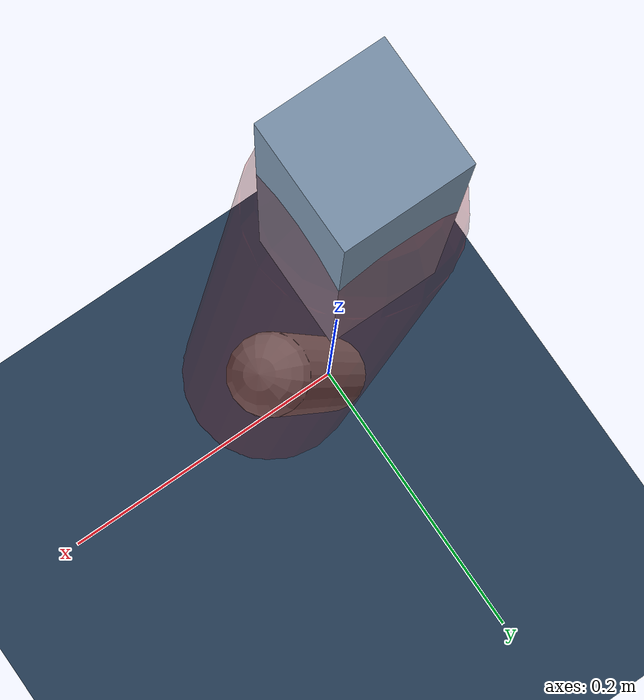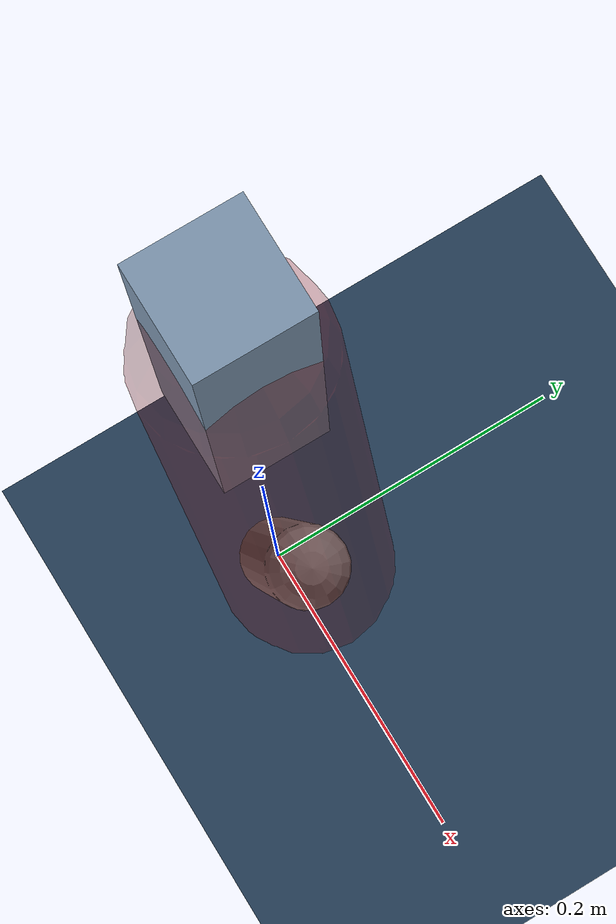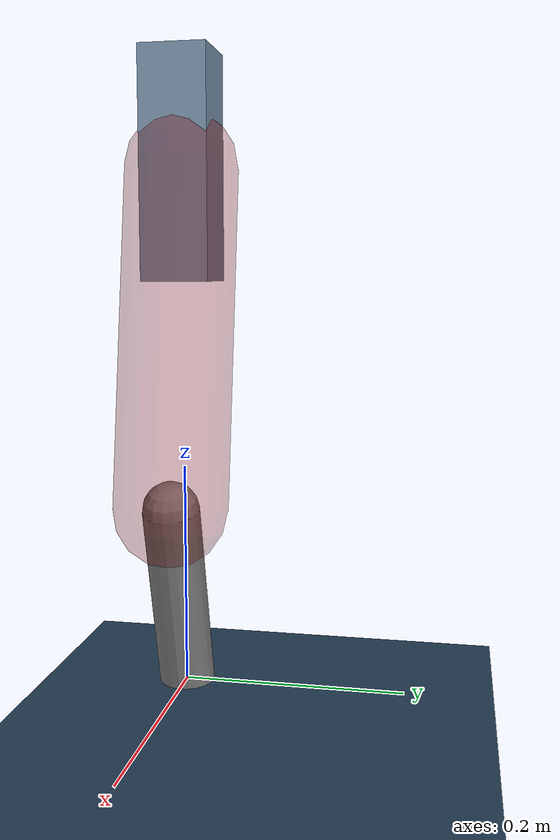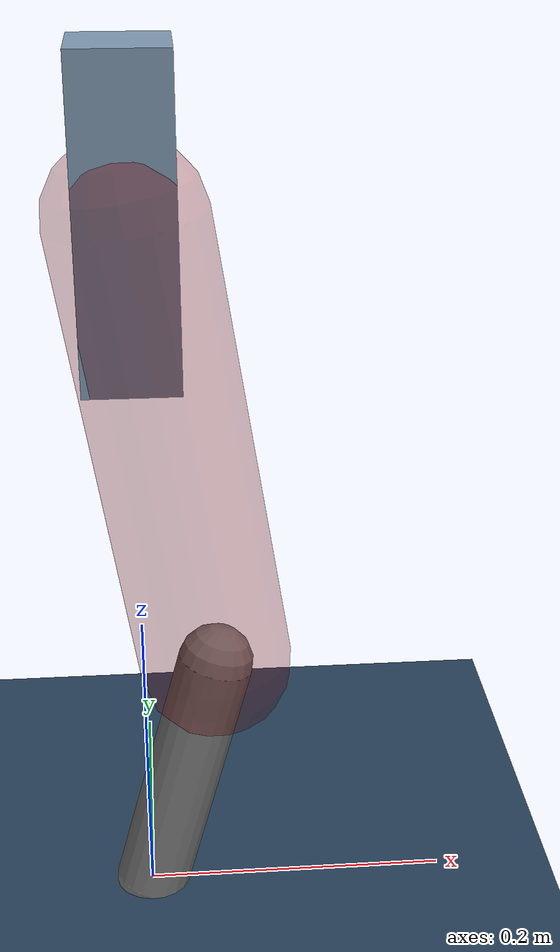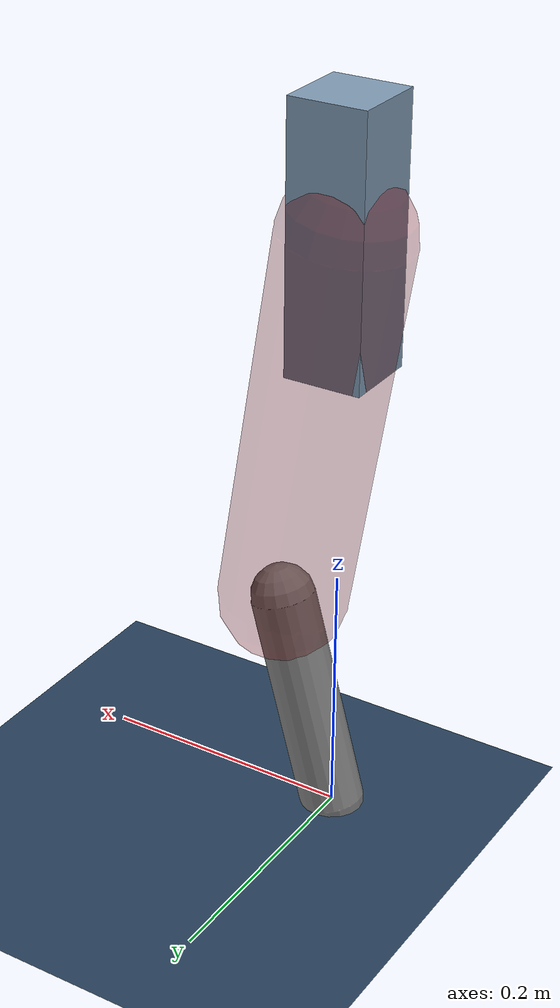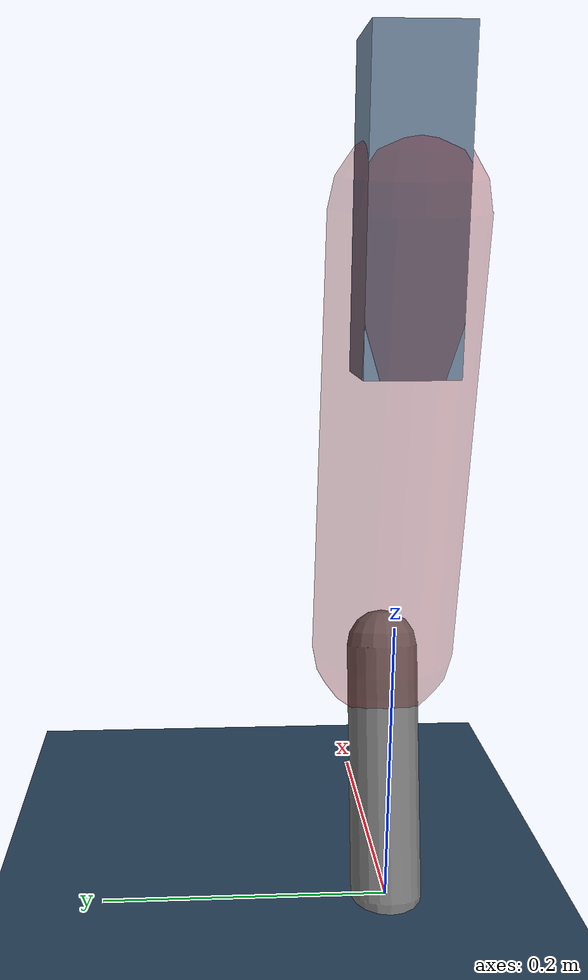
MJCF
<mujoco model="Hopper2D">
	<compiler inertiafromgeom="true" angle="radian" />
	<option timestep="0.001" integrator="implicit" cone="elliptic" solver="Newton" tolerance="1e-10" />

	<default>
		<geom contype="1" conaffinity="1" condim="3" friction="2 0.005 0.0001" solref="0.005 1" />
		<joint limited="true" damping="0.1" />
	</default>

	<asset>
		<texture name="skybox" type="skybox" builtin="gradient" rgb1=".4 .6 .8" rgb2="0 0 0" width="800" height="800" />
		<texture name="grid" type="2d" builtin="checker" rgb1=".1 .2 .3" rgb2=".2 .3 .4" width="300" height="300" mark="edge" markrgb=".2 .3 .4" />
		<material name="ground" texture="grid" texrepeat="1 1" texuniform="true" reflectance="0.1" />
		<material name="leg" rgba="0.5 0.6 0.7 1" />
	</asset>

	<worldbody>

		<geom name="floor" type="plane" size="5 5 0.25" material="ground" />

		<light directional="false" diffuse="0.8 0.8 0.8" specular="0.3 0.3 0.3" pos="0 0 2" dir="0 0 -1" />
		<light mode="targetbodycom" target="base" directional="false" diffuse="0.8 0.8 0.8" specular="0.3 0.3 0.3" pos="0 0 2" dir="0 0 -1" />

		<camera name="fixed" pos="0 -2 1" xyaxes="1 0 0 0 0 1" />
		<camera name="tracking" mode="trackcom" pos="0 -3 1" />

		<body name="root" pos="0 0 0.4679816363314452">
			<joint name="slide_x" type="slide" axis="1 0 0" range="-100 100" />
			<joint name="slide_z" type="slide" axis="0 0 1" range="0 10" />

			<body name="base" pos="0 0 0">
				<geom name="torso" type="box" size="0.03 0.03 0.1" mass="2.472" material="leg" />

				<body name="link1" pos="0 0 0" euler="0 1.414198503569958 0">
					<joint type="hinge" axis="0 -1 0" pos="0 0 0" name="hinge1" limited="true" range="-3.14 3.14" stiffness="0" damping="0.1" />
					<geom name="thigh" type="capsule" fromto="0 0 0 0.30075623555638753 0 0" size="0.05" rgba="0.5 0 0 0.3" mass="0.9907418360022463" />

					<body name="link2" pos="0.30075623555638753 0 0" euler="0 0.42445522782002 0">
						<joint type="hinge" axis="0 -1 0" pos="0 0 0" name="hinge2" limited="true" range="-3.14 3.14" stiffness="0" damping="0.1" />
						<geom name="shank" type="capsule" fromto="0 0 0 0.17722540077505766 0 0" size="0.025" mass="0.3815028606975519" />

					</body>
				</body>
			</body>
		</body>
	</worldbody>

	<actuator>
		<motor name="torque1" joint="hinge1" ctrlrange="-128.03614521014188 128.03614521014188" ctrllimited="true" gear="1" />
		<motor name="torque2" joint="hinge2" ctrlrange="-23.06088685128745 23.06088685128745" ctrllimited="true" gear="1" />
	</actuator>
</mujoco>
